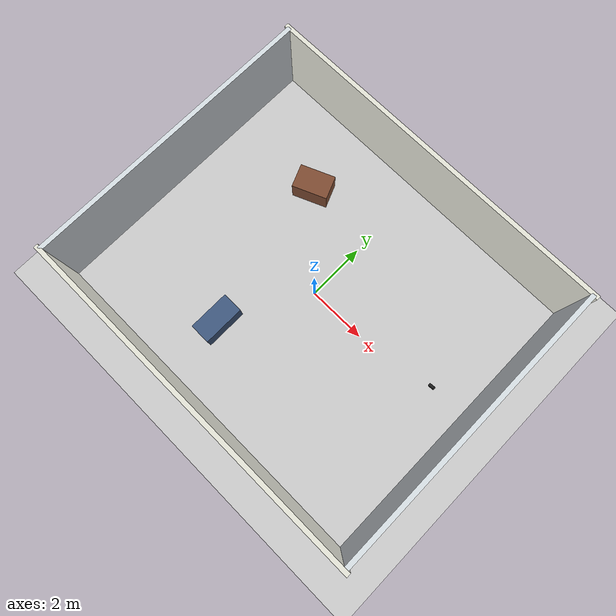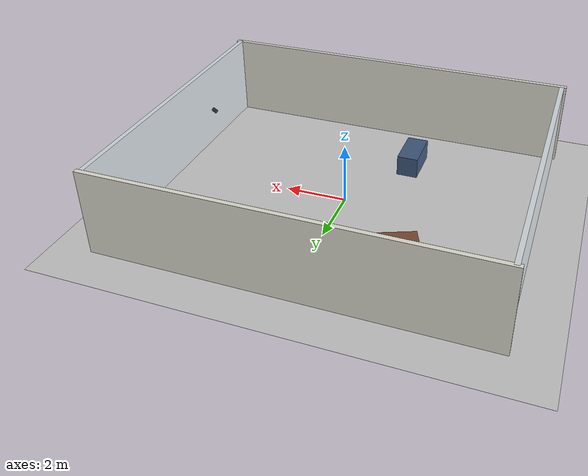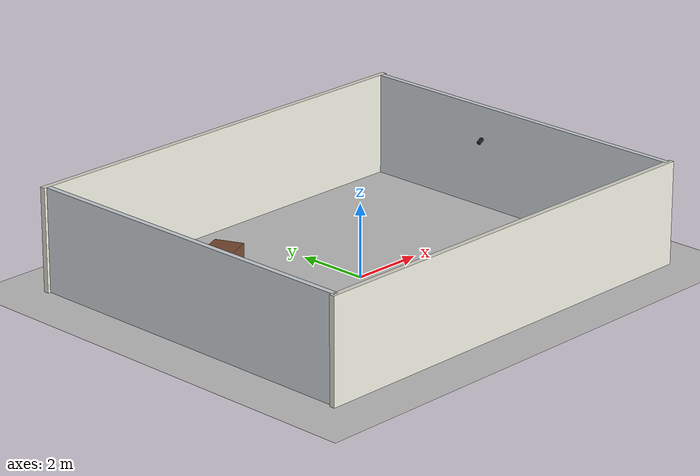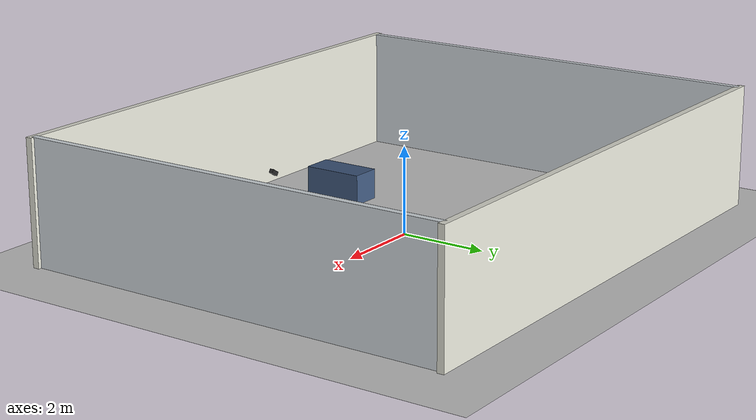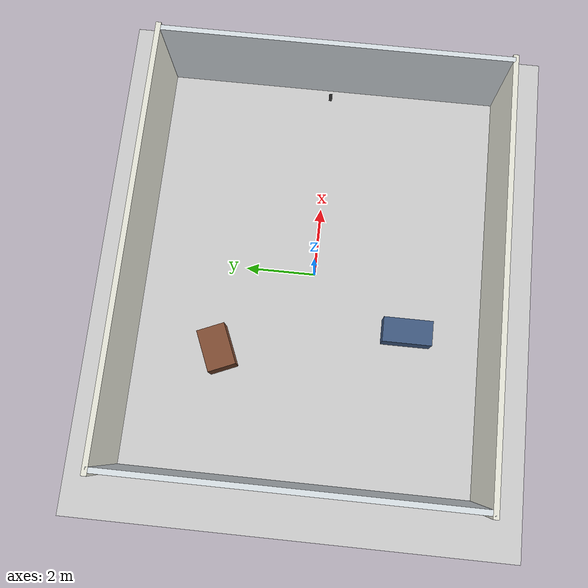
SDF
<sdf version="1.9">
 <world name="compliance_world">
  <plugin filename="gz-sim-physics-system" name="gz::sim::systems::Physics"/>
  <plugin filename="gz-sim-user-commands-system" name="gz::sim::systems::UserCommands"/>
  <plugin filename="gz-sim-scene-broadcaster-system" name="gz::sim::systems::SceneBroadcaster"/>
  <plugin filename="gz-sim-sensors-system" name="gz::sim::systems::Sensors">
   <render_engine>ogre2</render_engine>
  </plugin>
  <light type="directional" name="sun">
   <pose>0 0 10 0 0 0</pose>
   <diffuse>0.8 0.8 0.8 1</diffuse>
   <specular>0.2 0.2 0.2 1</specular>
   <attenuation>
    <range>1000</range>
    <constant>0.9</constant>
    <linear>0.01</linear>
    <quadratic>0.001</quadratic>
   </attenuation>
   <direction>-0.5 0.1 -0.9</direction>
  </light>
  <model name="ground_plane">
   <static>true</static>
   <link name="link">
    <collision name="collision">
     <geometry><plane><normal>0 0 1</normal><size>30 30</size></plane></geometry>
     <surface><friction><ode><mu>100</mu><mu2>50</mu2></ode></friction></surface>
    </collision>
    <visual name="visual">
     <geometry><plane><normal>0 0 1</normal><size>30 30</size></plane></geometry>
     <material><ambient>0.7 0.7 0.7 1</ambient><diffuse>0.8 0.8 0.8 1</diffuse></material>
    </visual>
   </link>
  </model>
  <model name="walls">
   <static>true</static>
   <link name="wall_north">
    <pose>0 5.0 1.4 0 0 0</pose>
    <collision name="c"><geometry><box><size>12.3 0.15 2.8</size></box></geometry></collision>
    <visual name="v">
     <geometry><box><size>12.3 0.15 2.8</size></box></geometry>
     <material><ambient>0.9 0.9 0.85 1</ambient><diffuse>0.9 0.9 0.85 1</diffuse></material>
    </visual>
   </link>
   <link name="wall_south">
    <pose>0 -5.0 1.4 0 0 0</pose>
    <collision name="c"><geometry><box><size>12.3 0.15 2.8</size></box></geometry></collision>
    <visual name="v">
     <geometry><box><size>12.3 0.15 2.8</size></box></geometry>
     <material><ambient>0.9 0.9 0.85 1</ambient><diffuse>0.9 0.9 0.85 1</diffuse></material>
    </visual>
   </link>
   <link name="wall_east">
    <pose>6.0 0 1.4 0 0 0</pose>
    <collision name="c"><geometry><box><size>0.15 10.0 2.8</size></box></geometry></collision>
    <visual name="v">
     <geometry><box><size>0.15 10.0 2.8</size></box></geometry>
     <material><ambient>0.85 0.88 0.9 1</ambient><diffuse>0.85 0.88 0.9 1</diffuse></material>
    </visual>
   </link>
   <link name="wall_west">
    <pose>-6.0 0 1.4 0 0 0</pose>
    <collision name="c"><geometry><box><size>0.15 10.0 2.8</size></box></geometry></collision>
    <visual name="v">
     <geometry><box><size>0.15 10.0 2.8</size></box></geometry>
     <material><ambient>0.85 0.88 0.9 1</ambient><diffuse>0.85 0.88 0.9 1</diffuse></material>
    </visual>
   </link>
  </model>
  <model name="obstacle_box_1">
   <static>true</static>
   <pose>-2.5 2.5 0.4 0 0 0.4</pose>
   <link name="link">
    <collision name="c"><geometry><box><size>1.2 0.8 0.8</size></box></geometry></collision>
    <visual name="v">
     <geometry><box><size>1.2 0.8 0.8</size></box></geometry>
     <material><ambient>0.4 0.25 0.15 1</ambient><diffuse>0.5 0.3 0.2 1</diffuse></material>
    </visual>
   </link>
  </model>
  <model name="obstacle_box_2">
   <static>true</static>
   <pose>-1.5 -2.8 0.35 0 0 0</pose>
   <link name="link">
    <collision name="c"><geometry><box><size>0.7 1.4 0.7</size></box></geometry></collision>
    <visual name="v">
     <geometry><box><size>0.7 1.4 0.7</size></box></geometry>
     <material><ambient>0.2 0.3 0.45 1</ambient><diffuse>0.25 0.35 0.5 1</diffuse></material>
    </visual>
   </link>
  </model>
  <model name="cctv_camera">
   <static>true</static>
   <pose>4.5 0 2.5 0 0.55 3.14159</pose>
   <link name="cctv_link">
    <visual name="body">
     <geometry><box><size>0.18 0.08 0.08</size></box></geometry>
     <material><ambient>0.1 0.1 0.1 1</ambient><diffuse>0.15 0.15 0.15 1</diffuse></material>
    </visual>
    <sensor name="cctv" type="camera">
     <topic>cctv/image_raw</topic>
     <gz_frame_id>cctv_link</gz_frame_id>
     <update_rate>10</update_rate>
     <always_on>true</always_on>
     <visualize>false</visualize>
     <camera>
      <horizontal_fov>1.3</horizontal_fov>
      <image><width>640</width><height>480</height><format>R8G8B8</format></image>
      <clip><near>0.05</near><far>20.0</far></clip>
     </camera>
    </sensor>
   </link>
  </model>
  <physics name="1ms" type="ignored">
   <real_time_update_rate>1000.0</real_time_update_rate>
   <max_step_size>0.001</max_step_size>
  </physics>
 </world>
</sdf>
